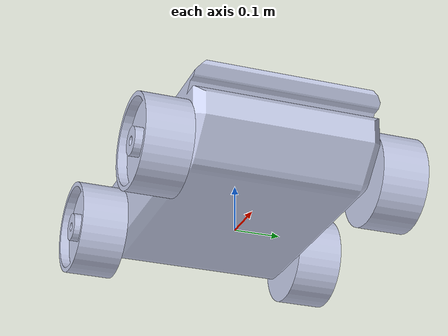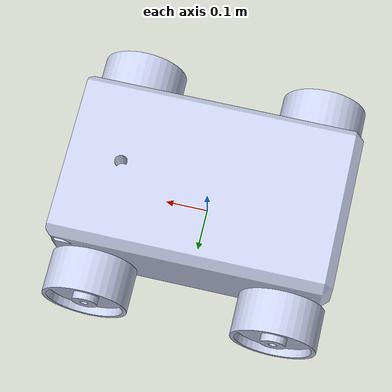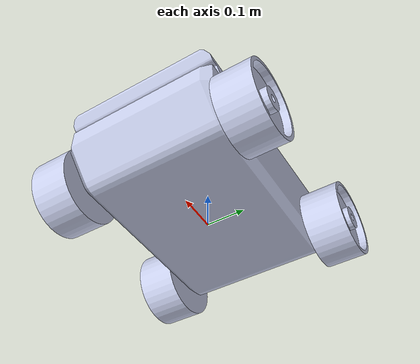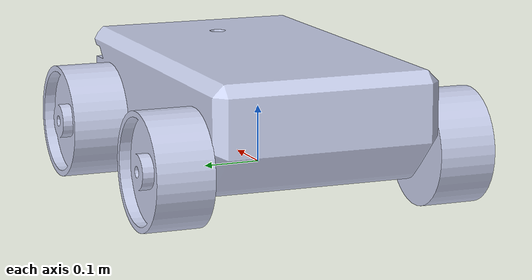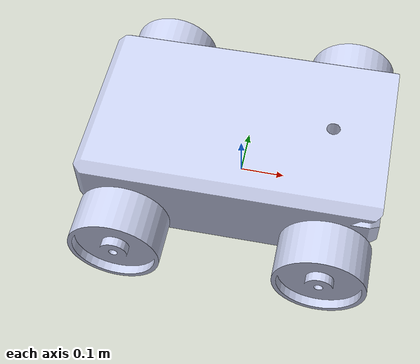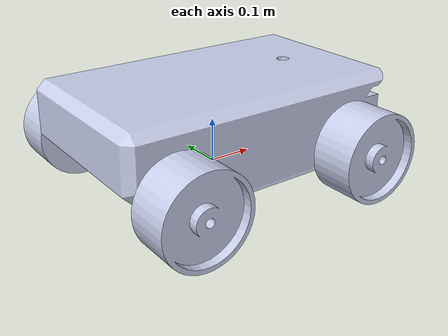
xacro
<?xml version="1.0"?>
<robot xmlns:xacro="http://www.ros.org/wiki/xacro" name="base">

  <link name="base_footprint">
    <inertial>
      <origin xyz="0.0030946 4.78250032638821E-11 0.053305" rpy="0 0 0" />
      <mass value="0" />
      <inertia ixx="0.0833333" ixy="-1.03781944357671E-10" ixz="0.00763014265820928" iyy="0.192708" iyz="1.09578155845563E-12" izz="0.242708" />
    </inertial>
  </link>

  <joint name="base_to_footprint_joint" type="fixed">
    <axis xyz="0 0 1"/>
    <parent link ="base_footprint"/>
    <child link ="base_link"/>
    <origin rpy ="0 0 0" xyz= "0 0 0.053305"/>
  </joint>

  <link name="base_link">
    <inertial>
      <origin xyz="0.0030946 4.78250032638821E-11 0.053305" rpy="0 0 0" />
      <mass value="5" />
      <inertia ixx="0.0833333" ixy="-1.03781944357671E-10" ixz="0.00763014265820928" iyy="0.192708" iyz="1.09578155845563E-12" izz="0.242708" />
    </inertial>
    <visual>
      <origin xyz="0 0 0" rpy="1.5707963267949 0 3.14" />
      <geometry>
        <mesh filename="package://robot_description/meshes/robot_base.stl" />
      </geometry>
      <material name="">
        <color rgba="0.79216 0.81961 0.93333 1" />
      </material>
    </visual>
    <collision>
      <origin xyz="0 0 0" rpy="1.5707963267949 0 3.14" />
      <geometry>
        <mesh filename="package://robot_description/meshes/robot_base.stl" />
      </geometry>
    </collision>
  </link>

  <link name="front_left_wheel">
    <inertial>
      <origin xyz="-4.1867E-18 0.0068085 -1.65658661799998E-18" rpy="0 0 0" />
      <mass value="2.6578" />
      <inertia ixx="0.00856502765719703" ixy="1.5074118157338E-19" ixz="-4.78150098725052E-19" iyy="0.013670640432096" iyz="-2.68136447099727E-19" izz="0.00856502765719703" />
    </inertial>
    <visual>
      <origin xyz="0 0 0" rpy="-1.5707963267949 0 0" />
      <geometry>
        <mesh filename="package://robot_description/meshes/wheel.stl" />
      </geometry>
      <material name="">
        <color rgba="0.79216 0.81961 0.93333 1" />
      </material>
    </visual>
    <collision>
      <origin xyz="0 0 0" rpy="-1.5707963267949 0 0" />
      <geometry>
        <mesh filename="package://robot_description/meshes/wheel.stl" />
      </geometry>
    </collision>
  </link>

  <link name="front_right_wheel">
    <inertial>
      <origin xyz="-4.1867E-18 0.0068085 -1.65658661799998E-18" rpy="0 0 0" />
      <mass value="2.6578" />
      <inertia ixx="0.00856502765719703" ixy="1.5074118157338E-19" ixz="-4.78150098725052E-19" iyy="0.013670640432096" iyz="-2.68136447099727E-19" izz="0.00856502765719703" />
    </inertial>
    <visual>
      <origin xyz="0 0 0" rpy="1.5707963267949 0 0" />
      <geometry>
        <mesh filename="package://robot_description/meshes/wheel.stl" />
      </geometry>
      <material name="">
        <color rgba="0.79216 0.81961 0.93333 1" />
      </material>
    </visual>
    <collision>
      <origin xyz="0 0 0" rpy="1.5707963267949 0 0" />
      <geometry>
        <mesh filename="package://robot_description/meshes/wheel.stl" />
      </geometry>
    </collision>
  </link>

  <link name="rear_left_wheel">
    <inertial>
      <origin xyz="-4.1867E-18 0.0068085 -1.65658661799998E-18" rpy="0 0 0" />
      <mass value="2.6578" />
      <inertia ixx="0.00856502765719703" ixy="1.5074118157338E-19" ixz="-4.78150098725052E-19" iyy="0.013670640432096" iyz="-2.68136447099727E-19" izz="0.00856502765719703" />
    </inertial>
    <visual>
      <origin xyz="0 0 0" rpy="-1.5707963267949 0 0" />
      <geometry>
        <mesh filename="package://robot_description/meshes/wheel.stl" />
      </geometry>
      <material name="">
        <color rgba="0.79216 0.81961 0.93333 1" />
      </material>
    </visual>
    <collision>
      <origin xyz="0 0 0" rpy="-1.5707963267949 0 0" />
      <geometry>
        <mesh filename="package://robot_description/meshes/wheel.stl" />
      </geometry>
    </collision>
  </link>

  <link name="rear_right_wheel">
    <inertial>
      <origin xyz="-4.1867E-18 0.0068085 -1.65658661799998E-18" rpy="0 0 0" />
      <mass value="2.6578" />
      <inertia ixx="0.00856502765719703" ixy="1.5074118157338E-19" ixz="-4.78150098725052E-19" iyy="0.013670640432096" iyz="-2.68136447099727E-19" izz="0.00856502765719703" />
    </inertial>
    <visual>
      <origin xyz="0 0 0" rpy="1.5707963267949 0 0" />
      <geometry>
        <mesh filename="package://robot_description/meshes/wheel.stl" />
      </geometry>
      <material name="">
        <color rgba="0.79216 0.81961 0.93333 1" />
      </material>
    </visual>
    <collision>
      <origin xyz="0 0 0" rpy="1.5707963267949 0 0" />
      <geometry>
        <mesh filename="package://robot_description/meshes/wheel.stl" />
      </geometry>
    </collision>
  </link>

  <joint name="front_left_wheel_joint" type="continuous">
    <axis xyz="0 1 0"/>
    <parent link ="base_link"/>
    <child link ="front_left_wheel"/>
    <origin rpy ="0 0 0" xyz= "0.220 0.250 0"/>
  </joint>

  <joint name="front_right_wheel_joint" type="continuous">
    <axis xyz="0 1 0"/>
    <parent link ="base_link"/>
    <child link ="front_right_wheel"/>
    <origin rpy ="0 0 0" xyz= "0.220 -0.250 0"/>
  </joint>

  <joint name="rear_left_wheel_joint" type="continuous">
    <axis xyz="0 1 0"/>
    <parent link ="base_link"/>
    <child link ="rear_left_wheel"/>
    <origin rpy ="0 0 0" xyz= "-0.220 0.250 0"/>
  </joint>

  <joint name="rear_right_wheel_joint" type="continuous">
    <axis xyz="0 1 0"/>
    <parent link ="base_link"/>
    <child link ="rear_right_wheel"/>
    <origin rpy ="0 0 0" xyz= "-0.220 -0.250 0"/>
  </joint>
</robot>
